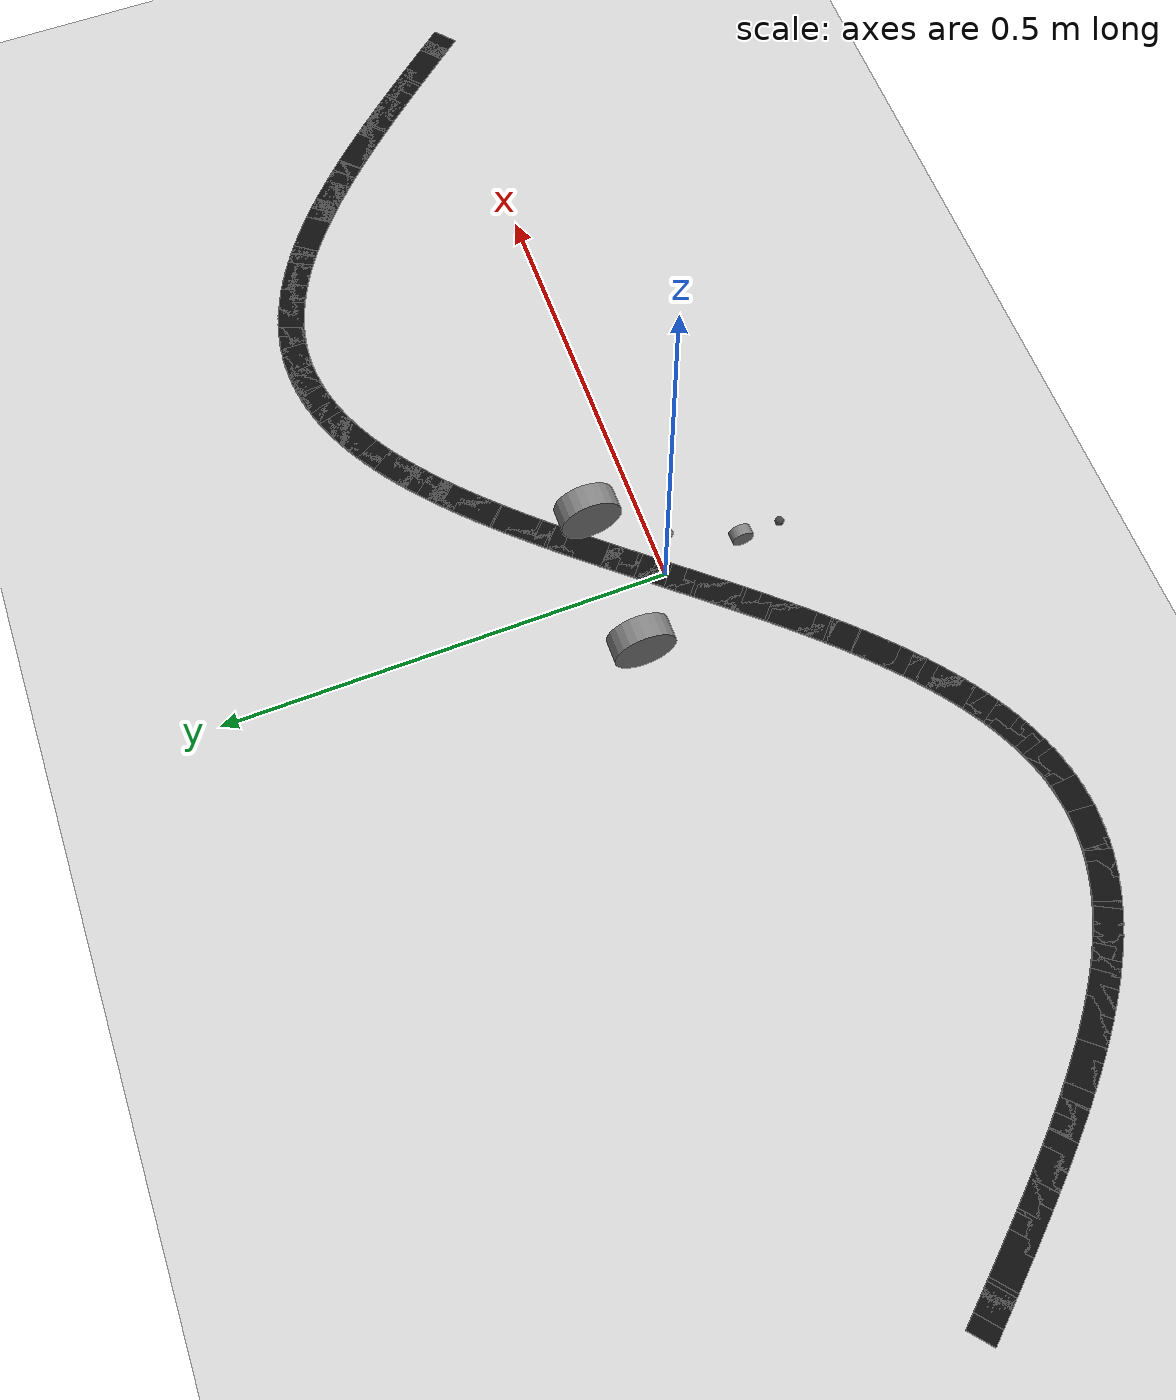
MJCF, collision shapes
<mujoco model="rover_line_s_curve">
  <!-- Pulls in the rover body/mesh/joint/camera tree compiled from rover.urdf -->
  <include file="rover.xml"/>
  <!-- Black line track (generated by scripts/gen_track.py) -->
  <include file="../../objects/tracks/track_s_curve.xml"/>

  <!-- Implicit integrator: see docs/onshape-to-robot-mjcf.md for why this matters here -->
  <!-- Offscreen framebuffer, only used for top-down renders and debugging; the
       policy's own 64x64 camera needs nothing this large. -->
  <visual>
    <global offwidth="960" offheight="640"/>
  </visual>

  <option integrator="implicitfast"/>

  <asset>
    <texture name="skybox" type="skybox" builtin="gradient"
             rgb1="0.75 0.80 0.86" rgb2="0.55 0.62 0.70" width="256" height="256"/>
  </asset>

  <worldbody>
    <!-- Overhead light so the rover and track are visible in the viewer -->
    <light diffuse=".8 .8 .8" pos="0 0 3" dir="0 0 -1"/>
    <!-- Ground plane sized to the track, not the default 10x10 rover_scene.xml floor -->
    <geom name="floor" type="plane" size="2 2 0.1" rgba=".8 .8 .8 1"/>
  </worldbody>

  <sensor>
    <jointvel name="left_wheel_speed" joint="left_axle"/>
    <jointvel name="right_wheel_speed" joint="right_axle"/>
    <velocimeter name="base_velocity" site="base_imu"/>
  </sensor>

  <actuator>
    <!-- Velocity servo on left wheel: ctrl is a target angular speed (rad/s) -->
    <velocity name="left_wheel_motor" joint="left_axle" kv="0.2" ctrlrange="-10 10"/>
    <!-- Velocity servo on right wheel: ctrl is a target angular speed (rad/s) -->
    <velocity name="right_wheel_motor" joint="right_axle" kv="0.2" ctrlrange="-10 10"/>
  </actuator>
</mujoco>

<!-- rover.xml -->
<mujoco model="rover_project">
  <!-- Auto-generated from rover.urdf via mj_saveLastXML; base_link pos/freejoint hand-adjusted, see rover_env.py -->
  <compiler angle="radian"/>

  <!-- STL meshes exported from OnShape by onshape-to-robot, one per rover part -->
  <asset>
    <mesh name="left_motor" content_type="model/stl" file="meshes/left_motor.stl"/>
    <mesh name="base_plate" content_type="model/stl" file="meshes/base_plate.stl"/>
    <mesh name="front_wheel_upper_joint" content_type="model/stl" file="meshes/front_wheel_upper_joint.stl"/>
    <mesh name="front_wheel_bracket" content_type="model/stl" file="meshes/front_wheel_bracket.stl"/>
    <mesh name="left_motor_bracket" content_type="model/stl" file="meshes/left_motor_bracket.stl"/>
    <mesh name="battery" content_type="model/stl" file="meshes/battery.stl"/>
    <mesh name="esp32" content_type="model/stl" file="meshes/esp32.stl"/>
    <mesh name="motor_controller" content_type="model/stl" file="meshes/motor_controller.stl"/>
    <mesh name="right_motor" content_type="model/stl" file="meshes/right_motor.stl"/>
    <mesh name="voltage_regulator" content_type="model/stl" file="meshes/voltage_regulator.stl"/>
    <mesh name="right_motor_bracket" content_type="model/stl" file="meshes/right_motor_bracket.stl"/>
    <mesh name="left_wheel" content_type="model/stl" file="meshes/left_wheel.stl"/>
    <mesh name="right_wheel" content_type="model/stl" file="meshes/right_wheel.stl"/>
    <mesh name="front_wheel_lower_joint" content_type="model/stl" file="meshes/front_wheel_lower_joint.stl"/>
    <mesh name="front_wheel" content_type="model/stl" file="meshes/front_wheel.stl"/>
  </asset>

  <worldbody>
    <!-- Rover chassis: free-floating base (6-DOF) so the whole rover can drive around the world -->
    <body name="base_link" pos="0 0 0.1">
      <inertial pos="-0.00237104 0.0277886 -0.0201836" quat="0.477074 0.524947 -0.508382 0.48824" mass="0.353116" diaginertia="0.00183094 0.00151404 0.000358957"/>
      <joint name="base_floating_joint" type="free"/>
      <camera name="top_cam" pos="0 -0.098 0.07" quat="0 0 0.50000000 0.86602540" fovy="60"/>
      <!-- Massless reference frame for the base velocimeter sensor. -->
      <site name="base_imu" pos="0 0 0" size="0.005"/>
      <!-- BEGIN generated lidar sites (scripts/gen_rover_lidar.py) -->
      <site name="lidar_left_0" pos="0 -0.13 -0.06" size="0.005" zaxis="0.216440 -0.976296 0"/>
      <site name="lidar_left_1" pos="0 -0.13 -0.06" size="0.005" zaxis="0.321439 -0.946930 0"/>
      <site name="lidar_left_2" pos="0 -0.13 -0.06" size="0.005" zaxis="0.422618 -0.906308 0"/>
      <site name="lidar_left_3" pos="0 -0.13 -0.06" size="0.005" zaxis="0.518773 -0.854912 0"/>
      <site name="lidar_left_4" pos="0 -0.13 -0.06" size="0.005" zaxis="0.608761 -0.793353 0"/>
      <site name="lidar_center_0" pos="0 -0.13 -0.06" size="0.005" zaxis="-0.216440 -0.976296 0"/>
      <site name="lidar_center_1" pos="0 -0.13 -0.06" size="0.005" zaxis="-0.108867 -0.994056 0"/>
      <site name="lidar_center_2" pos="0 -0.13 -0.06" size="0.005" zaxis="0.000000 -1.000000 0"/>
      <site name="lidar_center_3" pos="0 -0.13 -0.06" size="0.005" zaxis="0.108867 -0.994056 0"/>
      <site name="lidar_center_4" pos="0 -0.13 -0.06" size="0.005" zaxis="0.216440 -0.976296 0"/>
      <site name="lidar_right_0" pos="0 -0.13 -0.06" size="0.005" zaxis="-0.608761 -0.793353 0"/>
      <site name="lidar_right_1" pos="0 -0.13 -0.06" size="0.005" zaxis="-0.518773 -0.854912 0"/>
      <site name="lidar_right_2" pos="0 -0.13 -0.06" size="0.005" zaxis="-0.422618 -0.906308 0"/>
      <site name="lidar_right_3" pos="0 -0.13 -0.06" size="0.005" zaxis="-0.321439 -0.946930 0"/>
      <site name="lidar_right_4" pos="0 -0.13 -0.06" size="0.005" zaxis="-0.216440 -0.976296 0"/>
      <!-- END generated lidar sites -->
      <geom pos="0.0160863 -0.0852797 0.272765" quat="0.707105 0 0.707108 0" type="mesh" contype="0" conaffinity="0" rgba="0.647059 0.647059 0.647059 1" mesh="left_motor"/>
      <geom pos="-0.0886915 -0.18808 -0.0273587" quat="0.707105 0 0 -0.707108" type="mesh" contype="0" conaffinity="0" rgba="0.917647 0.917647 0.917647 1" mesh="base_plate"/>
      <geom pos="-0.473714 0.0946882 -0.0468587" quat="1.76043e-12 1.32679e-06 -1 -1.32679e-06" type="mesh" contype="0" conaffinity="0" rgba="0.498039 0.498039 0.498039 1" mesh="front_wheel_upper_joint"/>
      <geom pos="-0.472714 -0.220152 -0.0468587" quat="1.32679e-06 0 0 -1" type="mesh" contype="0" conaffinity="0" rgba="0.101961 0.101961 0.101961 1" mesh="front_wheel_bracket"/>
      <geom pos="-0.148629 0.205404 -0.0273587" quat="1.32679e-06 1 0 0" type="mesh" contype="0" conaffinity="0" rgba="0.352941 0.34902 0.34902 1" mesh="left_motor_bracket"/>
      <geom pos="-0.124871 0.0875749 -0.0243587" quat="0.707105 0 0 -0.707108" type="mesh" contype="0" conaffinity="0" rgba="0.0117647 0.505882 0.905882 1" mesh="battery"/>
      <geom pos="0.119292 0.0944044 -0.0213587" quat="1 0 0 0" type="mesh" contype="0" conaffinity="0" rgba="0.262745 0.282353 0.301961 1" mesh="esp32"/>
      <geom pos="0.20396 0.300238 -0.0213587" quat="1 0 0 0" type="mesh" contype="0" conaffinity="0" rgba="1 0 0 1" mesh="motor_controller"/>
      <geom pos="-0.0190726 0.115532 0.272765" quat="9.38184e-07 0.707105 9.38187e-07 -0.707108" type="mesh" contype="0" conaffinity="0" rgba="0.647059 0.647059 0.647059 1" mesh="right_motor"/>
      <geom pos="0.26251 0.228404 -0.0213587" quat="1 0 0 0" type="mesh" contype="0" conaffinity="0" rgba="0.0862745 0.317647 0.690196 1" mesh="voltage_regulator"/>
      <geom pos="0.145642 0.00584812 -0.0273587" quat="1.76037e-12 1.32679e-06 -1 -1.32679e-06" type="mesh" contype="0" conaffinity="0" rgba="0.352941 0.34902 0.34902 1" mesh="right_motor_bracket"/>
      <!-- Driven left wheel: hinge joint actuated by the left_wheel_motor in rover_scene.xml -->
      <body name="left_wheel" pos="0.0797863 0.0611262 -0.0504087" quat="0.499998 0.5 -0.500002 -0.5">
        <inertial pos="0 0 -0.01325" quat="0.5 0.5 -0.5 0.5" mass="0.034" diaginertia="2.00404e-05 1.20063e-05 1.20063e-05"/>
        <joint name="left_axle"/>
        <!-- Visual-only detailed mesh (collision handled by the cylinder primitive below) -->
        <geom pos="0.464529 -0.127654 -0.0265" quat="1 0 0 0" type="mesh" contype="0" conaffinity="0" rgba="0.176471 0.654902 0.937255 1" mesh="left_wheel"/>
        <geom type="cylinder" size="0.03435 0.01325" quat="0 0.707107 -0.707107 0"/>
      </body>
      <!-- Driven right wheel: hinge joint actuated by the right_wheel_motor in rover_scene.xml -->
      <body name="right_wheel" pos="-0.0827726 0.0611262 -0.0504087" quat="0.707105 0 0.707108 0">
        <inertial pos="0 0 -0.01325" quat="0.5 0.5 -0.5 0.5" mass="0.034" diaginertia="2.00404e-05 1.20063e-05 1.20063e-05"/>
        <joint name="right_axle"/>
        <!-- Visual-only detailed mesh (collision handled by the cylinder primitive below) -->
        <geom pos="0.464529 -0.0286537 -0.0265" quat="1 0 0 0" type="mesh" contype="0" conaffinity="0" rgba="0.176471 0.654902 0.937255 1" mesh="right_wheel"/>
        <geom type="cylinder" size="0.03435 0.01325" quat="0 0.707107 -0.707107 0"/>
      </body>
      <body name="front_wheel_lower_joint" pos="-0.00149314 -0.0978738 -0.0503587">
        <inertial pos="0 0 0" mass="0.005" diaginertia="4.5e-07 4.5e-07 4.5e-07"/>
        <joint name="front_swivel"/>
        <geom pos="0.343294 -0.190212 0" quat="1.32679e-06 1 0 0" type="mesh" contype="0" conaffinity="0" rgba="0.647059 0.647059 0.647059 1" mesh="front_wheel_lower_joint"/>
        <body name="front_wheel" pos="0.00635 0.00965 -0.0221132" quat="9.38184e-07 -0.707105 -9.38187e-07 -0.707108">
            <inertial pos="0 0 0" mass="0.005" diaginertia="2e-07 2e-07 2e-07"/>
            <joint name="front_axle"/>
          <!-- Visual-only detailed mesh (collision handled by the cylinder primitive below) -->
          <geom pos="0.344734 -0.122278 0" quat="1.32679e-06 1 0 0" type="mesh" contype="0" conaffinity="0" rgba="0.247059 0.247059 0.247059 1" mesh="front_wheel"/>
          <!-- Cylinder collision primitive: radius matches Webots' wider "flange" cylinder.
               quat derived from the mesh's *compiled* geom_quat, same fix as the main wheels above. -->
          <geom type="cylinder" size="0.0123 0.00611" quat="-0.707107 1.41421e-06 -1.41421e-06 -0.707107"/>
        </body>
      </body>
    </body>
  </worldbody>
</mujoco>

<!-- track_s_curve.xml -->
<mujoco model="track_s_curve">
  <worldbody>
    <geom name="line_0" type="box" size="0.0236 0.015 0.001" pos="-0.7944 -0.0065 0.001" quat="0.907537 0 0 -0.419971" contype="0" conaffinity="0" group="2" rgba="0.05 0.05 0.05 1"/>
    <geom name="line_1" type="box" size="0.0236 0.015 0.001" pos="-0.7833 -0.0196 0.001" quat="0.907735 0 0 -0.419545" contype="0" conaffinity="0" group="2" rgba="0.05 0.05 0.05 1"/>
    <geom name="line_2" type="box" size="0.0236 0.015 0.001" pos="-0.7722 -0.0327 0.001" quat="0.908130 0 0 -0.418689" contype="0" conaffinity="0" group="2" rgba="0.05 0.05 0.05 1"/>
    <geom name="line_3" type="box" size="0.0235 0.015 0.001" pos="-0.7611 -0.0456 0.001" quat="0.908723 0 0 -0.417400" contype="0" conaffinity="0" group="2" rgba="0.05 0.05 0.05 1"/>
    <geom name="line_4" type="box" size="0.0235 0.015 0.001" pos="-0.7500 -0.0585 0.001" quat="0.909516 0 0 -0.415670" contype="0" conaffinity="0" group="2" rgba="0.05 0.05 0.05 1"/>
    <geom name="line_5" type="box" size="0.0234 0.015 0.001" pos="-0.7389 -0.0713 0.001" quat="0.910509 0 0 -0.413490" contype="0" conaffinity="0" group="2" rgba="0.05 0.05 0.05 1"/>
    <geom name="line_6" type="box" size="0.0234 0.015 0.001" pos="-0.7278 -0.0839 0.001" quat="0.911704 0 0 -0.410849" contype="0" conaffinity="0" group="2" rgba="0.05 0.05 0.05 1"/>
    <geom name="line_7" type="box" size="0.0233 0.015 0.001" pos="-0.7167 -0.0964 0.001" quat="0.913102 0 0 -0.407731" contype="0" conaffinity="0" group="2" rgba="0.05 0.05 0.05 1"/>
    <geom name="line_8" type="box" size="0.0233 0.015 0.001" pos="-0.7056 -0.1087 0.001" quat="0.914706 0 0 -0.404120" contype="0" conaffinity="0" group="2" rgba="0.05 0.05 0.05 1"/>
    <geom name="line_9" type="box" size="0.0232 0.015 0.001" pos="-0.6944 -0.1208 0.001" quat="0.916516 0 0 -0.399997" contype="0" conaffinity="0" group="2" rgba="0.05 0.05 0.05 1"/>
    <geom name="line_10" type="box" size="0.0231 0.015 0.001" pos="-0.6833 -0.1327 0.001" quat="0.918535 0 0 -0.395339" contype="0" conaffinity="0" group="2" rgba="0.05 0.05 0.05 1"/>
    <geom name="line_11" type="box" size="0.0230 0.015 0.001" pos="-0.6722 -0.1443 0.001" quat="0.920764 0 0 -0.390121" contype="0" conaffinity="0" group="2" rgba="0.05 0.05 0.05 1"/>
    <geom name="line_12" type="box" size="0.0229 0.015 0.001" pos="-0.6611 -0.1556 0.001" quat="0.923202 0 0 -0.384314" contype="0" conaffinity="0" group="2" rgba="0.05 0.05 0.05 1"/>
    <geom name="line_13" type="box" size="0.0228 0.015 0.001" pos="-0.6500 -0.1666 0.001" quat="0.925851 0 0 -0.377889" contype="0" conaffinity="0" group="2" rgba="0.05 0.05 0.05 1"/>
    <geom name="line_14" type="box" size="0.0227 0.015 0.001" pos="-0.6389 -0.1774 0.001" quat="0.928709 0 0 -0.370809" contype="0" conaffinity="0" group="2" rgba="0.05 0.05 0.05 1"/>
    <geom name="line_15" type="box" size="0.0225 0.015 0.001" pos="-0.6278 -0.1877 0.001" quat="0.931774 0 0 -0.363039" contype="0" conaffinity="0" group="2" rgba="0.05 0.05 0.05 1"/>
    <geom name="line_16" type="box" size="0.0224 0.015 0.001" pos="-0.6167 -0.1978 0.001" quat="0.935041 0 0 -0.354539" contype="0" conaffinity="0" group="2" rgba="0.05 0.05 0.05 1"/>
    <geom name="line_17" type="box" size="0.0223 0.015 0.001" pos="-0.6056 -0.2074 0.001" quat="0.938505 0 0 -0.345266" contype="0" conaffinity="0" group="2" rgba="0.05 0.05 0.05 1"/>
    <geom name="line_18" type="box" size="0.0222 0.015 0.001" pos="-0.5944 -0.2167 0.001" quat="0.942156 0 0 -0.335176" contype="0" conaffinity="0" group="2" rgba="0.05 0.05 0.05 1"/>
    <geom name="line_19" type="box" size="0.0220 0.015 0.001" pos="-0.5833 -0.2255 0.001" quat="0.945981 0 0 -0.324222" contype="0" conaffinity="0" group="2" rgba="0.05 0.05 0.05 1"/>
    <geom name="line_20" type="box" size="0.0219 0.015 0.001" pos="-0.5722 -0.2339 0.001" quat="0.949964 0 0 -0.312359" contype="0" conaffinity="0" group="2" rgba="0.05 0.05 0.05 1"/>
    <geom name="line_21" type="box" size="0.0218 0.015 0.001" pos="-0.5611 -0.2419 0.001" quat="0.954084 0 0 -0.299538" contype="0" conaffinity="0" group="2" rgba="0.05 0.05 0.05 1"/>
    <geom name="line_22" type="box" size="0.0216 0.015 0.001" pos="-0.5500 -0.2494 0.001" quat="0.958314 0 0 -0.285716" contype="0" conaffinity="0" group="2" rgba="0.05 0.05 0.05 1"/>
    <geom name="line_23" type="box" size="0.0215 0.015 0.001" pos="-0.5389 -0.2564 0.001" quat="0.962621 0 0 -0.270851" contype="0" conaffinity="0" group="2" rgba="0.05 0.05 0.05 1"/>
    <geom name="line_24" type="box" size="0.0214 0.015 0.001" pos="-0.5278 -0.2630 0.001" quat="0.966966 0 0 -0.254907" contype="0" conaffinity="0" group="2" rgba="0.05 0.05 0.05 1"/>
    <geom name="line_25" type="box" size="0.0213 0.015 0.001" pos="-0.5167 -0.2690 0.001" quat="0.971300 0 0 -0.237858" contype="0" conaffinity="0" group="2" rgba="0.05 0.05 0.05 1"/>
    <geom name="line_26" type="box" size="0.0211 0.015 0.001" pos="-0.5056 -0.2745 0.001" quat="0.975570 0 0 -0.219688" contype="0" conaffinity="0" group="2" rgba="0.05 0.05 0.05 1"/>
    <geom name="line_27" type="box" size="0.0210 0.015 0.001" pos="-0.4944 -0.2795 0.001" quat="0.979715 0 0 -0.200396" contype="0" conaffinity="0" group="2" rgba="0.05 0.05 0.05 1"/>
    <geom name="line_28" type="box" size="0.0209 0.015 0.001" pos="-0.4833 -0.2840 0.001" quat="0.983667 0 0 -0.180000" contype="0" conaffinity="0" group="2" rgba="0.05 0.05 0.05 1"/>
    <geom name="line_29" type="box" size="0.0208 0.015 0.001" pos="-0.4722 -0.2879 0.001" quat="0.987353 0 0 -0.158540" contype="0" conaffinity="0" group="2" rgba="0.05 0.05 0.05 1"/>
    <geom name="line_30" type="box" size="0.0208 0.015 0.001" pos="-0.4611 -0.2913 0.001" quat="0.990698 0 0 -0.136078" contype="0" conaffinity="0" group="2" rgba="0.05 0.05 0.05 1"/>
    <geom name="line_31" type="box" size="0.0207 0.015 0.001" pos="-0.4500 -0.2942 0.001" quat="0.993628 0 0 -0.112707" contype="0" conaffinity="0" group="2" rgba="0.05 0.05 0.05 1"/>
    <geom name="line_32" type="box" size="0.0206 0.015 0.001" pos="-0.4389 -0.2964 0.001" quat="0.996072 0 0 -0.088544" contype="0" conaffinity="0" group="2" rgba="0.05 0.05 0.05 1"/>
    <geom name="line_33" type="box" size="0.0206 0.015 0.001" pos="-0.4278 -0.2981 0.001" quat="0.997967 0 0 -0.063731" contype="0" conaffinity="0" group="2" rgba="0.05 0.05 0.05 1"/>
    <geom name="line_34" type="box" size="0.0206 0.015 0.001" pos="-0.4167 -0.2993 0.001" quat="0.999261 0 0 -0.038437" contype="0" conaffinity="0" group="2" rgba="0.05 0.05 0.05 1"/>
    <geom name="line_35" type="box" size="0.0206 0.015 0.001" pos="-0.4056 -0.2999 0.001" quat="0.999917 0 0 -0.012846" contype="0" conaffinity="0" group="2" rgba="0.05 0.05 0.05 1"/>
    <geom name="line_36" type="box" size="0.0206 0.015 0.001" pos="-0.3944 -0.2999 0.001" quat="0.999917 0 0 0.012846" contype="0" conaffinity="0" group="2" rgba="0.05 0.05 0.05 1"/>
    <geom name="line_37" type="box" size="0.0206 0.015 0.001" pos="-0.3833 -0.2993 0.001" quat="0.999261 0 0 0.038437" contype="0" conaffinity="0" group="2" rgba="0.05 0.05 0.05 1"/>
    <geom name="line_38" type="box" size="0.0206 0.015 0.001" pos="-0.3722 -0.2981 0.001" quat="0.997967 0 0 0.063731" contype="0" conaffinity="0" group="2" rgba="0.05 0.05 0.05 1"/>
    <geom name="line_39" type="box" size="0.0206 0.015 0.001" pos="-0.3611 -0.2964 0.001" quat="0.996072 0 0 0.088544" contype="0" conaffinity="0" group="2" rgba="0.05 0.05 0.05 1"/>
    <geom name="line_40" type="box" size="0.0207 0.015 0.001" pos="-0.3500 -0.2942 0.001" quat="0.993628 0 0 0.112707" contype="0" conaffinity="0" group="2" rgba="0.05 0.05 0.05 1"/>
    <geom name="line_41" type="box" size="0.0208 0.015 0.001" pos="-0.3389 -0.2913 0.001" quat="0.990698 0 0 0.136078" contype="0" conaffinity="0" group="2" rgba="0.05 0.05 0.05 1"/>
    <geom name="line_42" type="box" size="0.0208 0.015 0.001" pos="-0.3278 -0.2879 0.001" quat="0.987353 0 0 0.158540" contype="0" conaffinity="0" group="2" rgba="0.05 0.05 0.05 1"/>
    <geom name="line_43" type="box" size="0.0209 0.015 0.001" pos="-0.3167 -0.2840 0.001" quat="0.983667 0 0 0.180000" contype="0" conaffinity="0" group="2" rgba="0.05 0.05 0.05 1"/>
    <geom name="line_44" type="box" size="0.0210 0.015 0.001" pos="-0.3056 -0.2795 0.001" quat="0.979715 0 0 0.200396" contype="0" conaffinity="0" group="2" rgba="0.05 0.05 0.05 1"/>
    <geom name="line_45" type="box" size="0.0211 0.015 0.001" pos="-0.2944 -0.2745 0.001" quat="0.975570 0 0 0.219688" contype="0" conaffinity="0" group="2" rgba="0.05 0.05 0.05 1"/>
    <geom name="line_46" type="box" size="0.0213 0.015 0.001" pos="-0.2833 -0.2690 0.001" quat="0.971300 0 0 0.237858" contype="0" conaffinity="0" group="2" rgba="0.05 0.05 0.05 1"/>
    <geom name="line_47" type="box" size="0.0214 0.015 0.001" pos="-0.2722 -0.2630 0.001" quat="0.966966 0 0 0.254907" contype="0" conaffinity="0" group="2" rgba="0.05 0.05 0.05 1"/>
    <geom name="line_48" type="box" size="0.0215 0.015 0.001" pos="-0.2611 -0.2564 0.001" quat="0.962621 0 0 0.270851" contype="0" conaffinity="0" group="2" rgba="0.05 0.05 0.05 1"/>
    <geom name="line_49" type="box" size="0.0216 0.015 0.001" pos="-0.2500 -0.2494 0.001" quat="0.958314 0 0 0.285716" contype="0" conaffinity="0" group="2" rgba="0.05 0.05 0.05 1"/>
    <geom name="line_50" type="box" size="0.0218 0.015 0.001" pos="-0.2389 -0.2419 0.001" quat="0.954084 0 0 0.299538" contype="0" conaffinity="0" group="2" rgba="0.05 0.05 0.05 1"/>
    <geom name="line_51" type="box" size="0.0219 0.015 0.001" pos="-0.2278 -0.2339 0.001" quat="0.949964 0 0 0.312359" contype="0" conaffinity="0" group="2" rgba="0.05 0.05 0.05 1"/>
    <geom name="line_52" type="box" size="0.0220 0.015 0.001" pos="-0.2167 -0.2255 0.001" quat="0.945981 0 0 0.324222" contype="0" conaffinity="0" group="2" rgba="0.05 0.05 0.05 1"/>
    <geom name="line_53" type="box" size="0.0222 0.015 0.001" pos="-0.2056 -0.2167 0.001" quat="0.942156 0 0 0.335176" contype="0" conaffinity="0" group="2" rgba="0.05 0.05 0.05 1"/>
    <geom name="line_54" type="box" size="0.0223 0.015 0.001" pos="-0.1944 -0.2074 0.001" quat="0.938505 0 0 0.345266" contype="0" conaffinity="0" group="2" rgba="0.05 0.05 0.05 1"/>
    <geom name="line_55" type="box" size="0.0224 0.015 0.001" pos="-0.1833 -0.1978 0.001" quat="0.935041 0 0 0.354539" contype="0" conaffinity="0" group="2" rgba="0.05 0.05 0.05 1"/>
    <geom name="line_56" type="box" size="0.0225 0.015 0.001" pos="-0.1722 -0.1877 0.001" quat="0.931774 0 0 0.363039" contype="0" conaffinity="0" group="2" rgba="0.05 0.05 0.05 1"/>
    <geom name="line_57" type="box" size="0.0227 0.015 0.001" pos="-0.1611 -0.1774 0.001" quat="0.928709 0 0 0.370809" contype="0" conaffinity="0" group="2" rgba="0.05 0.05 0.05 1"/>
    <geom name="line_58" type="box" size="0.0228 0.015 0.001" pos="-0.1500 -0.1666 0.001" quat="0.925851 0 0 0.377889" contype="0" conaffinity="0" group="2" rgba="0.05 0.05 0.05 1"/>
    <geom name="line_59" type="box" size="0.0229 0.015 0.001" pos="-0.1389 -0.1556 0.001" quat="0.923202 0 0 0.384314" contype="0" conaffinity="0" group="2" rgba="0.05 0.05 0.05 1"/>
    <geom name="line_60" type="box" size="0.0230 0.015 0.001" pos="-0.1278 -0.1443 0.001" quat="0.920764 0 0 0.390121" contype="0" conaffinity="0" group="2" rgba="0.05 0.05 0.05 1"/>
    <geom name="line_61" type="box" size="0.0231 0.015 0.001" pos="-0.1167 -0.1327 0.001" quat="0.918535 0 0 0.395339" contype="0" conaffinity="0" group="2" rgba="0.05 0.05 0.05 1"/>
    <geom name="line_62" type="box" size="0.0232 0.015 0.001" pos="-0.1056 -0.1208 0.001" quat="0.916516 0 0 0.399997" contype="0" conaffinity="0" group="2" rgba="0.05 0.05 0.05 1"/>
    <geom name="line_63" type="box" size="0.0233 0.015 0.001" pos="-0.0944 -0.1087 0.001" quat="0.914706 0 0 0.404120" contype="0" conaffinity="0" group="2" rgba="0.05 0.05 0.05 1"/>
    <geom name="line_64" type="box" size="0.0233 0.015 0.001" pos="-0.0833 -0.0964 0.001" quat="0.913102 0 0 0.407731" contype="0" conaffinity="0" group="2" rgba="0.05 0.05 0.05 1"/>
    <geom name="line_65" type="box" size="0.0234 0.015 0.001" pos="-0.0722 -0.0839 0.001" quat="0.911704 0 0 0.410849" contype="0" conaffinity="0" group="2" rgba="0.05 0.05 0.05 1"/>
    <geom name="line_66" type="box" size="0.0234 0.015 0.001" pos="-0.0611 -0.0713 0.001" quat="0.910509 0 0 0.413490" contype="0" conaffinity="0" group="2" rgba="0.05 0.05 0.05 1"/>
    <geom name="line_67" type="box" size="0.0235 0.015 0.001" pos="-0.0500 -0.0585 0.001" quat="0.909516 0 0 0.415670" contype="0" conaffinity="0" group="2" rgba="0.05 0.05 0.05 1"/>
    <geom name="line_68" type="box" size="0.0235 0.015 0.001" pos="-0.0389 -0.0456 0.001" quat="0.908723 0 0 0.417400" contype="0" conaffinity="0" group="2" rgba="0.05 0.05 0.05 1"/>
    <geom name="line_69" type="box" size="0.0236 0.015 0.001" pos="-0.0278 -0.0327 0.001" quat="0.908130 0 0 0.418689" contype="0" conaffinity="0" group="2" rgba="0.05 0.05 0.05 1"/>
    <geom name="line_70" type="box" size="0.0236 0.015 0.001" pos="-0.0167 -0.0196 0.001" quat="0.907735 0 0 0.419545" contype="0" conaffinity="0" group="2" rgba="0.05 0.05 0.05 1"/>
    <geom name="line_71" type="box" size="0.0236 0.015 0.001" pos="-0.0056 -0.0065 0.001" quat="0.907537 0 0 0.419971" contype="0" conaffinity="0" group="2" rgba="0.05 0.05 0.05 1"/>
    <geom name="line_72" type="box" size="0.0236 0.015 0.001" pos="0.0056 0.0065 0.001" quat="0.907537 0 0 0.419971" contype="0" conaffinity="0" group="2" rgba="0.05 0.05 0.05 1"/>
    <geom name="line_73" type="box" size="0.0236 0.015 0.001" pos="0.0167 0.0196 0.001" quat="0.907735 0 0 0.419545" contype="0" conaffinity="0" group="2" rgba="0.05 0.05 0.05 1"/>
    <geom name="line_74" type="box" size="0.0236 0.015 0.001" pos="0.0278 0.0327 0.001" quat="0.908130 0 0 0.418689" contype="0" conaffinity="0" group="2" rgba="0.05 0.05 0.05 1"/>
    <geom name="line_75" type="box" size="0.0235 0.015 0.001" pos="0.0389 0.0456 0.001" quat="0.908723 0 0 0.417400" contype="0" conaffinity="0" group="2" rgba="0.05 0.05 0.05 1"/>
    <geom name="line_76" type="box" size="0.0235 0.015 0.001" pos="0.0500 0.0585 0.001" quat="0.909516 0 0 0.415670" contype="0" conaffinity="0" group="2" rgba="0.05 0.05 0.05 1"/>
    <geom name="line_77" type="box" size="0.0234 0.015 0.001" pos="0.0611 0.0713 0.001" quat="0.910509 0 0 0.413490" contype="0" conaffinity="0" group="2" rgba="0.05 0.05 0.05 1"/>
    <geom name="line_78" type="box" size="0.0234 0.015 0.001" pos="0.0722 0.0839 0.001" quat="0.911704 0 0 0.410849" contype="0" conaffinity="0" group="2" rgba="0.05 0.05 0.05 1"/>
    <geom name="line_79" type="box" size="0.0233 0.015 0.001" pos="0.0833 0.0964 0.001" quat="0.913102 0 0 0.407731" contype="0" conaffinity="0" group="2" rgba="0.05 0.05 0.05 1"/>
    <geom name="line_80" type="box" size="0.0233 0.015 0.001" pos="0.0944 0.1087 0.001" quat="0.914706 0 0 0.404120" contype="0" conaffinity="0" group="2" rgba="0.05 0.05 0.05 1"/>
    <geom name="line_81" type="box" size="0.0232 0.015 0.001" pos="0.1056 0.1208 0.001" quat="0.916516 0 0 0.399997" contype="0" conaffinity="0" group="2" rgba="0.05 0.05 0.05 1"/>
    <geom name="line_82" type="box" size="0.0231 0.015 0.001" pos="0.1167 0.1327 0.001" quat="0.918535 0 0 0.395339" contype="0" conaffinity="0" group="2" rgba="0.05 0.05 0.05 1"/>
    <geom name="line_83" type="box" size="0.0230 0.015 0.001" pos="0.1278 0.1443 0.001" quat="0.920764 0 0 0.390121" contype="0" conaffinity="0" group="2" rgba="0.05 0.05 0.05 1"/>
    <geom name="line_84" type="box" size="0.0229 0.015 0.001" pos="0.1389 0.1556 0.001" quat="0.923202 0 0 0.384314" contype="0" conaffinity="0" group="2" rgba="0.05 0.05 0.05 1"/>
    <geom name="line_85" type="box" size="0.0228 0.015 0.001" pos="0.1500 0.1666 0.001" quat="0.925851 0 0 0.377889" contype="0" conaffinity="0" group="2" rgba="0.05 0.05 0.05 1"/>
    <geom name="line_86" type="box" size="0.0227 0.015 0.001" pos="0.1611 0.1774 0.001" quat="0.928709 0 0 0.370809" contype="0" conaffinity="0" group="2" rgba="0.05 0.05 0.05 1"/>
    <geom name="line_87" type="box" size="0.0225 0.015 0.001" pos="0.1722 0.1877 0.001" quat="0.931774 0 0 0.363039" contype="0" conaffinity="0" group="2" rgba="0.05 0.05 0.05 1"/>
    <geom name="line_88" type="box" size="0.0224 0.015 0.001" pos="0.1833 0.1978 0.001" quat="0.935041 0 0 0.354539" contype="0" conaffinity="0" group="2" rgba="0.05 0.05 0.05 1"/>
    <geom name="line_89" type="box" size="0.0223 0.015 0.001" pos="0.1944 0.2074 0.001" quat="0.938505 0 0 0.345266" contype="0" conaffinity="0" group="2" rgba="0.05 0.05 0.05 1"/>
    <geom name="line_90" type="box" size="0.0222 0.015 0.001" pos="0.2056 0.2167 0.001" quat="0.942156 0 0 0.335176" contype="0" conaffinity="0" group="2" rgba="0.05 0.05 0.05 1"/>
    <geom name="line_91" type="box" size="0.0220 0.015 0.001" pos="0.2167 0.2255 0.001" quat="0.945981 0 0 0.324222" contype="0" conaffinity="0" group="2" rgba="0.05 0.05 0.05 1"/>
    <geom name="line_92" type="box" size="0.0219 0.015 0.001" pos="0.2278 0.2339 0.001" quat="0.949964 0 0 0.312359" contype="0" conaffinity="0" group="2" rgba="0.05 0.05 0.05 1"/>
    <geom name="line_93" type="box" size="0.0218 0.015 0.001" pos="0.2389 0.2419 0.001" quat="0.954084 0 0 0.299538" contype="0" conaffinity="0" group="2" rgba="0.05 0.05 0.05 1"/>
    <geom name="line_94" type="box" size="0.0216 0.015 0.001" pos="0.2500 0.2494 0.001" quat="0.958314 0 0 0.285716" contype="0" conaffinity="0" group="2" rgba="0.05 0.05 0.05 1"/>
    <geom name="line_95" type="box" size="0.0215 0.015 0.001" pos="0.2611 0.2564 0.001" quat="0.962621 0 0 0.270851" contype="0" conaffinity="0" group="2" rgba="0.05 0.05 0.05 1"/>
    <geom name="line_96" type="box" size="0.0214 0.015 0.001" pos="0.2722 0.2630 0.001" quat="0.966966 0 0 0.254907" contype="0" conaffinity="0" group="2" rgba="0.05 0.05 0.05 1"/>
    <geom name="line_97" type="box" size="0.0213 0.015 0.001" pos="0.2833 0.2690 0.001" quat="0.971300 0 0 0.237858" contype="0" conaffinity="0" group="2" rgba="0.05 0.05 0.05 1"/>
    <geom name="line_98" type="box" size="0.0211 0.015 0.001" pos="0.2944 0.2745 0.001" quat="0.975570 0 0 0.219688" contype="0" conaffinity="0" group="2" rgba="0.05 0.05 0.05 1"/>
    <geom name="line_99" type="box" size="0.0210 0.015 0.001" pos="0.3056 0.2795 0.001" quat="0.979715 0 0 0.200396" contype="0" conaffinity="0" group="2" rgba="0.05 0.05 0.05 1"/>
    <geom name="line_100" type="box" size="0.0209 0.015 0.001" pos="0.3167 0.2840 0.001" quat="0.983667 0 0 0.180000" contype="0" conaffinity="0" group="2" rgba="0.05 0.05 0.05 1"/>
    <geom name="line_101" type="box" size="0.0208 0.015 0.001" pos="0.3278 0.2879 0.001" quat="0.987353 0 0 0.158540" contype="0" conaffinity="0" group="2" rgba="0.05 0.05 0.05 1"/>
    <geom name="line_102" type="box" size="0.0208 0.015 0.001" pos="0.3389 0.2913 0.001" quat="0.990698 0 0 0.136078" contype="0" conaffinity="0" group="2" rgba="0.05 0.05 0.05 1"/>
    <geom name="line_103" type="box" size="0.0207 0.015 0.001" pos="0.3500 0.2942 0.001" quat="0.993628 0 0 0.112707" contype="0" conaffinity="0" group="2" rgba="0.05 0.05 0.05 1"/>
    <geom name="line_104" type="box" size="0.0206 0.015 0.001" pos="0.3611 0.2964 0.001" quat="0.996072 0 0 0.088544" contype="0" conaffinity="0" group="2" rgba="0.05 0.05 0.05 1"/>
    <geom name="line_105" type="box" size="0.0206 0.015 0.001" pos="0.3722 0.2981 0.001" quat="0.997967 0 0 0.063731" contype="0" conaffinity="0" group="2" rgba="0.05 0.05 0.05 1"/>
    <geom name="line_106" type="box" size="0.0206 0.015 0.001" pos="0.3833 0.2993 0.001" quat="0.999261 0 0 0.038437" contype="0" conaffinity="0" group="2" rgba="0.05 0.05 0.05 1"/>
    <geom name="line_107" type="box" size="0.0206 0.015 0.001" pos="0.3944 0.2999 0.001" quat="0.999917 0 0 0.012846" contype="0" conaffinity="0" group="2" rgba="0.05 0.05 0.05 1"/>
    <geom name="line_108" type="box" size="0.0206 0.015 0.001" pos="0.4056 0.2999 0.001" quat="0.999917 0 0 -0.012846" contype="0" conaffinity="0" group="2" rgba="0.05 0.05 0.05 1"/>
    <geom name="line_109" type="box" size="0.0206 0.015 0.001" pos="0.4167 0.2993 0.001" quat="0.999261 0 0 -0.038437" contype="0" conaffinity="0" group="2" rgba="0.05 0.05 0.05 1"/>
    <geom name="line_110" type="box" size="0.0206 0.015 0.001" pos="0.4278 0.2981 0.001" quat="0.997967 0 0 -0.063731" contype="0" conaffinity="0" group="2" rgba="0.05 0.05 0.05 1"/>
    <geom name="line_111" type="box" size="0.0206 0.015 0.001" pos="0.4389 0.2964 0.001" quat="0.996072 0 0 -0.088544" contype="0" conaffinity="0" group="2" rgba="0.05 0.05 0.05 1"/>
    <geom name="line_112" type="box" size="0.0207 0.015 0.001" pos="0.4500 0.2942 0.001" quat="0.993628 0 0 -0.112707" contype="0" conaffinity="0" group="2" rgba="0.05 0.05 0.05 1"/>
    <geom name="line_113" type="box" size="0.0208 0.015 0.001" pos="0.4611 0.2913 0.001" quat="0.990698 0 0 -0.136078" contype="0" conaffinity="0" group="2" rgba="0.05 0.05 0.05 1"/>
    <geom name="line_114" type="box" size="0.0208 0.015 0.001" pos="0.4722 0.2879 0.001" quat="0.987353 0 0 -0.158540" contype="0" conaffinity="0" group="2" rgba="0.05 0.05 0.05 1"/>
    <geom name="line_115" type="box" size="0.0209 0.015 0.001" pos="0.4833 0.2840 0.001" quat="0.983667 0 0 -0.180000" contype="0" conaffinity="0" group="2" rgba="0.05 0.05 0.05 1"/>
    <geom name="line_116" type="box" size="0.0210 0.015 0.001" pos="0.4944 0.2795 0.001" quat="0.979715 0 0 -0.200396" contype="0" conaffinity="0" group="2" rgba="0.05 0.05 0.05 1"/>
    <geom name="line_117" type="box" size="0.0211 0.015 0.001" pos="0.5056 0.2745 0.001" quat="0.975570 0 0 -0.219688" contype="0" conaffinity="0" group="2" rgba="0.05 0.05 0.05 1"/>
    <geom name="line_118" type="box" size="0.0213 0.015 0.001" pos="0.5167 0.2690 0.001" quat="0.971300 0 0 -0.237858" contype="0" conaffinity="0" group="2" rgba="0.05 0.05 0.05 1"/>
    <geom name="line_119" type="box" size="0.0214 0.015 0.001" pos="0.5278 0.2630 0.001" quat="0.966966 0 0 -0.254907" contype="0" conaffinity="0" group="2" rgba="0.05 0.05 0.05 1"/>
    <geom name="line_120" type="box" size="0.0215 0.015 0.001" pos="0.5389 0.2564 0.001" quat="0.962621 0 0 -0.270851" contype="0" conaffinity="0" group="2" rgba="0.05 0.05 0.05 1"/>
    <geom name="line_121" type="box" size="0.0216 0.015 0.001" pos="0.5500 0.2494 0.001" quat="0.958314 0 0 -0.285716" contype="0" conaffinity="0" group="2" rgba="0.05 0.05 0.05 1"/>
    <geom name="line_122" type="box" size="0.0218 0.015 0.001" pos="0.5611 0.2419 0.001" quat="0.954084 0 0 -0.299538" contype="0" conaffinity="0" group="2" rgba="0.05 0.05 0.05 1"/>
    <geom name="line_123" type="box" size="0.0219 0.015 0.001" pos="0.5722 0.2339 0.001" quat="0.949964 0 0 -0.312359" contype="0" conaffinity="0" group="2" rgba="0.05 0.05 0.05 1"/>
    <geom name="line_124" type="box" size="0.0220 0.015 0.001" pos="0.5833 0.2255 0.001" quat="0.945981 0 0 -0.324222" contype="0" conaffinity="0" group="2" rgba="0.05 0.05 0.05 1"/>
    <geom name="line_125" type="box" size="0.0222 0.015 0.001" pos="0.5944 0.2167 0.001" quat="0.942156 0 0 -0.335176" contype="0" conaffinity="0" group="2" rgba="0.05 0.05 0.05 1"/>
    <geom name="line_126" type="box" size="0.0223 0.015 0.001" pos="0.6056 0.2074 0.001" quat="0.938505 0 0 -0.345266" contype="0" conaffinity="0" group="2" rgba="0.05 0.05 0.05 1"/>
    <geom name="line_127" type="box" size="0.0224 0.015 0.001" pos="0.6167 0.1978 0.001" quat="0.935041 0 0 -0.354539" contype="0" conaffinity="0" group="2" rgba="0.05 0.05 0.05 1"/>
    <geom name="line_128" type="box" size="0.0225 0.015 0.001" pos="0.6278 0.1877 0.001" quat="0.931774 0 0 -0.363039" contype="0" conaffinity="0" group="2" rgba="0.05 0.05 0.05 1"/>
    <geom name="line_129" type="box" size="0.0227 0.015 0.001" pos="0.6389 0.1774 0.001" quat="0.928709 0 0 -0.370809" contype="0" conaffinity="0" group="2" rgba="0.05 0.05 0.05 1"/>
    <geom name="line_130" type="box" size="0.0228 0.015 0.001" pos="0.6500 0.1666 0.001" quat="0.925851 0 0 -0.377889" contype="0" conaffinity="0" group="2" rgba="0.05 0.05 0.05 1"/>
    <geom name="line_131" type="box" size="0.0229 0.015 0.001" pos="0.6611 0.1556 0.001" quat="0.923202 0 0 -0.384314" contype="0" conaffinity="0" group="2" rgba="0.05 0.05 0.05 1"/>
    <geom name="line_132" type="box" size="0.0230 0.015 0.001" pos="0.6722 0.1443 0.001" quat="0.920764 0 0 -0.390121" contype="0" conaffinity="0" group="2" rgba="0.05 0.05 0.05 1"/>
    <geom name="line_133" type="box" size="0.0231 0.015 0.001" pos="0.6833 0.1327 0.001" quat="0.918535 0 0 -0.395339" contype="0" conaffinity="0" group="2" rgba="0.05 0.05 0.05 1"/>
    <geom name="line_134" type="box" size="0.0232 0.015 0.001" pos="0.6944 0.1208 0.001" quat="0.916516 0 0 -0.399997" contype="0" conaffinity="0" group="2" rgba="0.05 0.05 0.05 1"/>
    <geom name="line_135" type="box" size="0.0233 0.015 0.001" pos="0.7056 0.1087 0.001" quat="0.914706 0 0 -0.404120" contype="0" conaffinity="0" group="2" rgba="0.05 0.05 0.05 1"/>
    <geom name="line_136" type="box" size="0.0233 0.015 0.001" pos="0.7167 0.0964 0.001" quat="0.913102 0 0 -0.407731" contype="0" conaffinity="0" group="2" rgba="0.05 0.05 0.05 1"/>
    <geom name="line_137" type="box" size="0.0234 0.015 0.001" pos="0.7278 0.0839 0.001" quat="0.911704 0 0 -0.410849" contype="0" conaffinity="0" group="2" rgba="0.05 0.05 0.05 1"/>
    <geom name="line_138" type="box" size="0.0234 0.015 0.001" pos="0.7389 0.0713 0.001" quat="0.910509 0 0 -0.413490" contype="0" conaffinity="0" group="2" rgba="0.05 0.05 0.05 1"/>
    <geom name="line_139" type="box" size="0.0235 0.015 0.001" pos="0.7500 0.0585 0.001" quat="0.909516 0 0 -0.415670" contype="0" conaffinity="0" group="2" rgba="0.05 0.05 0.05 1"/>
    <geom name="line_140" type="box" size="0.0235 0.015 0.001" pos="0.7611 0.0456 0.001" quat="0.908723 0 0 -0.417400" contype="0" conaffinity="0" group="2" rgba="0.05 0.05 0.05 1"/>
    <geom name="line_141" type="box" size="0.0236 0.015 0.001" pos="0.7722 0.0327 0.001" quat="0.908130 0 0 -0.418689" contype="0" conaffinity="0" group="2" rgba="0.05 0.05 0.05 1"/>
    <geom name="line_142" type="box" size="0.0236 0.015 0.001" pos="0.7833 0.0196 0.001" quat="0.907735 0 0 -0.419545" contype="0" conaffinity="0" group="2" rgba="0.05 0.05 0.05 1"/>
    <geom name="line_143" type="box" size="0.0236 0.015 0.001" pos="0.7944 0.0065 0.001" quat="0.907537 0 0 -0.419971" contype="0" conaffinity="0" group="2" rgba="0.05 0.05 0.05 1"/>
  </worldbody>
</mujoco>
